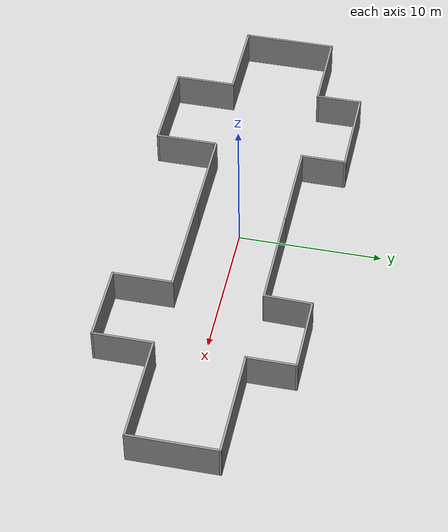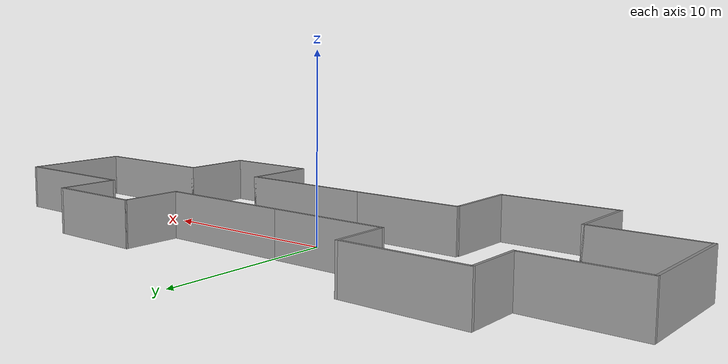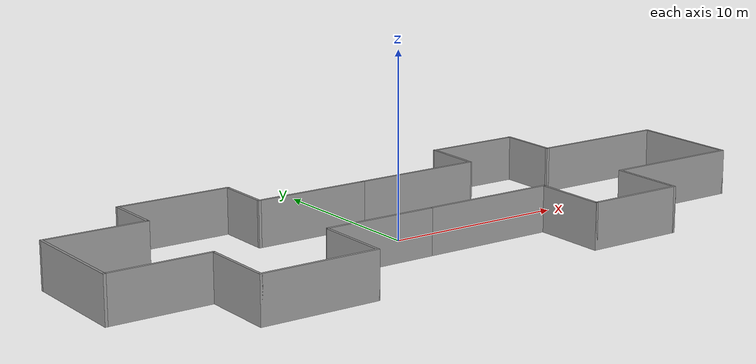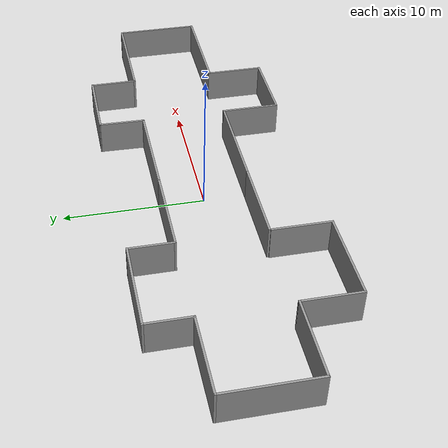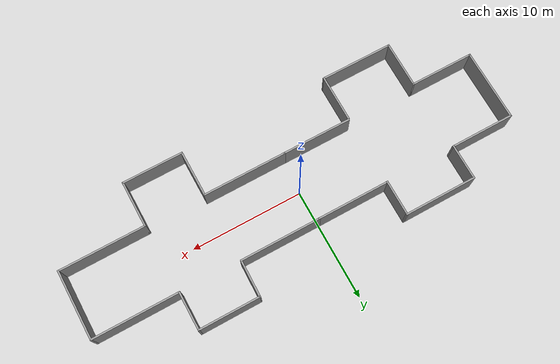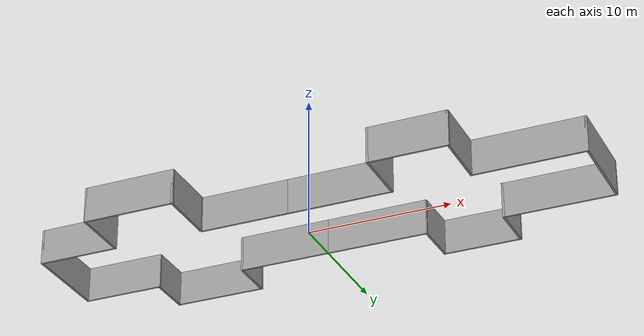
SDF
<?xml version='1.0'?>
<sdf version='1.7'>
  <model name='corredores.world'>
    <pose>0.888521 -0.410206 0 0 -0 0</pose>
    <link name='Wall_39'>
      <collision name='Wall_39_Collision'>
        <geometry>
          <box>
            <size>7.25 0.15 2.5</size>
          </box>
        </geometry>
        <pose>0 0 1.25 0 -0 0</pose>
      </collision>
      <visual name='Wall_39_Visual'>
        <pose>0 0 1.25 0 -0 0</pose>
        <geometry>
          <box>
            <size>7.25 0.15 2.5</size>
          </box>
        </geometry>
        <material>
          <script>
            <uri>file://media/materials/scripts/gazebo.material</uri>
            <name>Gazebo/Grey</name>
          </script>
          <ambient>1 1 1 1</ambient>
        </material>
        <meta>
          <layer>0</layer>
        </meta>
      </visual>
      <pose>2.64177 3.60415 0 0 -0 0</pose>
    </link>
    <link name='Wall_41'>
      <collision name='Wall_41_Collision'>
        <geometry>
          <box>
            <size>7.5 0.15 2.5</size>
          </box>
        </geometry>
        <pose>0 0 1.25 0 -0 0</pose>
      </collision>
      <visual name='Wall_41_Visual'>
        <pose>0 0 1.25 0 -0 0</pose>
        <geometry>
          <box>
            <size>7.5 0.15 2.5</size>
          </box>
        </geometry>
        <material>
          <script>
            <uri>file://media/materials/scripts/gazebo.material</uri>
            <name>Gazebo/Grey</name>
          </script>
          <ambient>1 1 1 1</ambient>
        </material>
        <meta>
          <layer>0</layer>
        </meta>
      </visual>
      <pose>2.58323 -2.60567 0 0 -0 0</pose>
    </link>
    <link name='Wall_43'>
      <collision name='Wall_43_Collision'>
        <geometry>
          <box>
            <size>4.25 0.15 2.5</size>
          </box>
        </geometry>
        <pose>0 0 1.25 0 -0 0</pose>
      </collision>
      <visual name='Wall_43_Visual'>
        <pose>0 0 1.25 0 -0 0</pose>
        <geometry>
          <box>
            <size>4.25 0.15 2.5</size>
          </box>
        </geometry>
        <material>
          <script>
            <uri>file://media/materials/scripts/gazebo.material</uri>
            <name>Gazebo/Grey</name>
          </script>
          <ambient>1 1 1 1</ambient>
        </material>
        <meta>
          <layer>0</layer>
        </meta>
      </visual>
      <pose>6.25823 -4.65567 0 0 -0 -1.5708</pose>
    </link>
    <link name='Wall_44'>
      <collision name='Wall_44_Collision'>
        <geometry>
          <box>
            <size>5.5 0.15 2.5</size>
          </box>
        </geometry>
        <pose>0 0 1.25 0 -0 0</pose>
      </collision>
      <visual name='Wall_44_Visual'>
        <pose>0 0 1.25 0 -0 0</pose>
        <geometry>
          <box>
            <size>5.5 0.15 2.5</size>
          </box>
        </geometry>
        <material>
          <script>
            <uri>file://media/materials/scripts/gazebo.material</uri>
            <name>Gazebo/Grey</name>
          </script>
          <ambient>1 1 1 1</ambient>
        </material>
        <meta>
          <layer>0</layer>
        </meta>
      </visual>
      <pose>8.93323 -6.70567 0 0 -0 0</pose>
    </link>
    <link name='Wall_45'>
      <collision name='Wall_45_Collision'>
        <geometry>
          <box>
            <size>4.25 0.15 2.5</size>
          </box>
        </geometry>
        <pose>0 0 1.25 0 -0 0</pose>
      </collision>
      <visual name='Wall_45_Visual'>
        <pose>0 0 1.25 0 -0 0</pose>
        <geometry>
          <box>
            <size>4.25 0.15 2.5</size>
          </box>
        </geometry>
        <material>
          <script>
            <uri>file://media/materials/scripts/gazebo.material</uri>
            <name>Gazebo/Grey</name>
          </script>
          <ambient>1 1 1 1</ambient>
        </material>
        <meta>
          <layer>0</layer>
        </meta>
      </visual>
      <pose>11.6082 -4.65567 0 0 -0 1.5708</pose>
    </link>
    <link name='Wall_46'>
      <collision name='Wall_46_Collision'>
        <geometry>
          <box>
            <size>7.75 0.15 2.5</size>
          </box>
        </geometry>
        <pose>0 0 1.25 0 -0 0</pose>
      </collision>
      <visual name='Wall_46_Visual'>
        <pose>0 0 1.25 0 -0 0</pose>
        <geometry>
          <box>
            <size>7.75 0.15 2.5</size>
          </box>
        </geometry>
        <material>
          <script>
            <uri>file://media/materials/scripts/gazebo.material</uri>
            <name>Gazebo/Grey</name>
          </script>
          <ambient>1 1 1 1</ambient>
        </material>
        <meta>
          <layer>0</layer>
        </meta>
      </visual>
      <pose>15.4082 -2.60567 0 0 -0 0</pose>
    </link>
    <link name='Wall_47'>
      <collision name='Wall_47_Collision'>
        <geometry>
          <box>
            <size>6.25 0.15 2.5</size>
          </box>
        </geometry>
        <pose>0 0 1.25 0 -0 0</pose>
      </collision>
      <visual name='Wall_47_Visual'>
        <pose>0 0 1.25 0 -0 0</pose>
        <geometry>
          <box>
            <size>6.25 0.15 2.5</size>
          </box>
        </geometry>
        <material>
          <script>
            <uri>file://media/materials/scripts/gazebo.material</uri>
            <name>Gazebo/Grey</name>
          </script>
          <ambient>1 1 1 1</ambient>
        </material>
        <meta>
          <layer>0</layer>
        </meta>
      </visual>
      <pose>19.2082 0.444331 0 0 -0 1.5708</pose>
    </link>
    <link name='Wall_49'>
      <collision name='Wall_49_Collision'>
        <geometry>
          <box>
            <size>7.75 0.15 2.5</size>
          </box>
        </geometry>
        <pose>0 0 1.25 0 -0 0</pose>
      </collision>
      <visual name='Wall_49_Visual'>
        <pose>0 0 1.25 0 -0 0</pose>
        <geometry>
          <box>
            <size>7.75 0.15 2.5</size>
          </box>
        </geometry>
        <material>
          <script>
            <uri>file://media/materials/scripts/gazebo.material</uri>
            <name>Gazebo/Grey</name>
          </script>
          <ambient>1 1 1 1</ambient>
        </material>
        <meta>
          <layer>0</layer>
        </meta>
      </visual>
      <pose>15.4082 3.49433 0 0 -0 3.14159</pose>
    </link>
    <link name='Wall_50'>
      <collision name='Wall_50_Collision'>
        <geometry>
          <box>
            <size>3.5 0.15 2.5</size>
          </box>
        </geometry>
        <pose>0 0 1.25 0 -0 0</pose>
      </collision>
      <visual name='Wall_50_Visual'>
        <pose>0 0 1.25 0 -0 0</pose>
        <geometry>
          <box>
            <size>3.5 0.15 2.5</size>
          </box>
        </geometry>
        <material>
          <script>
            <uri>file://media/materials/scripts/gazebo.material</uri>
            <name>Gazebo/Grey</name>
          </script>
          <ambient>1 1 1 1</ambient>
        </material>
        <meta>
          <layer>0</layer>
        </meta>
      </visual>
      <pose>11.6082 5.16933 0 0 -0 1.5708</pose>
    </link>
    <link name='Wall_51'>
      <collision name='Wall_51_Collision'>
        <geometry>
          <box>
            <size>5.5 0.15 2.5</size>
          </box>
        </geometry>
        <pose>0 0 1.25 0 -0 0</pose>
      </collision>
      <visual name='Wall_51_Visual'>
        <pose>0 0 1.25 0 -0 0</pose>
        <geometry>
          <box>
            <size>5.5 0.15 2.5</size>
          </box>
        </geometry>
        <material>
          <script>
            <uri>file://media/materials/scripts/gazebo.material</uri>
            <name>Gazebo/Grey</name>
          </script>
          <ambient>1 1 1 1</ambient>
        </material>
        <meta>
          <layer>0</layer>
        </meta>
      </visual>
      <pose>8.93323 6.84433 0 0 -0 3.14159</pose>
    </link>
    <link name='Wall_52'>
      <collision name='Wall_52_Collision'>
        <geometry>
          <box>
            <size>3.39086 0.15 2.5</size>
          </box>
        </geometry>
        <pose>0 0 1.25 0 -0 0</pose>
      </collision>
      <visual name='Wall_52_Visual'>
        <pose>0 0 1.25 0 -0 0</pose>
        <geometry>
          <box>
            <size>3.39086 0.15 2.5</size>
          </box>
        </geometry>
        <material>
          <script>
            <uri>file://media/materials/scripts/gazebo.material</uri>
            <name>Gazebo/Grey</name>
          </script>
          <ambient>1 1 1 1</ambient>
        </material>
        <meta>
          <layer>0</layer>
        </meta>
      </visual>
      <pose>6.225 5.22424 0 0 -0 -1.5913</pose>
    </link>
    <link name='Wall_54'>
      <collision name='Wall_54_Collision'>
        <geometry>
          <box>
            <size>6.5 0.15 2.5</size>
          </box>
        </geometry>
        <pose>0 0 1.25 0 -0 0</pose>
      </collision>
      <visual name='Wall_54_Visual'>
        <pose>0 0 1.25 0 -0 0</pose>
        <geometry>
          <box>
            <size>6.5 0.15 2.5</size>
          </box>
        </geometry>
        <material>
          <script>
            <uri>file://media/materials/scripts/gazebo.material</uri>
            <name>Gazebo/Grey</name>
          </script>
          <ambient>1 1 1 1</ambient>
        </material>
        <meta>
          <layer>0</layer>
        </meta>
      </visual>
      <pose>-4.08323 3.60415 0 0 -0 3.14159</pose>
    </link>
    <link name='Wall_55'>
      <collision name='Wall_55_Collision'>
        <geometry>
          <box>
            <size>3.25 0.15 2.5</size>
          </box>
        </geometry>
        <pose>0 0 1.25 0 -0 0</pose>
      </collision>
      <visual name='Wall_55_Visual'>
        <pose>0 0 1.25 0 -0 0</pose>
        <geometry>
          <box>
            <size>3.25 0.15 2.5</size>
          </box>
        </geometry>
        <material>
          <script>
            <uri>file://media/materials/scripts/gazebo.material</uri>
            <name>Gazebo/Grey</name>
          </script>
          <ambient>1 1 1 1</ambient>
        </material>
        <meta>
          <layer>0</layer>
        </meta>
      </visual>
      <pose>-7.25823 5.15415 0 0 -0 1.5708</pose>
    </link>
    <link name='Wall_56'>
      <collision name='Wall_56_Collision'>
        <geometry>
          <box>
            <size>6.5 0.15 2.5</size>
          </box>
        </geometry>
        <pose>0 0 1.25 0 -0 0</pose>
      </collision>
      <visual name='Wall_56_Visual'>
        <pose>0 0 1.25 0 -0 0</pose>
        <geometry>
          <box>
            <size>6.5 0.15 2.5</size>
          </box>
        </geometry>
        <material>
          <script>
            <uri>file://media/materials/scripts/gazebo.material</uri>
            <name>Gazebo/Grey</name>
          </script>
          <ambient>1 1 1 1</ambient>
        </material>
        <meta>
          <layer>0</layer>
        </meta>
      </visual>
      <pose>-10.4332 6.70415 0 0 -0 3.14159</pose>
    </link>
    <link name='Wall_57'>
      <collision name='Wall_57_Collision'>
        <geometry>
          <box>
            <size>3.25 0.15 2.5</size>
          </box>
        </geometry>
        <pose>0 0 1.25 0 -0 0</pose>
      </collision>
      <visual name='Wall_57_Visual'>
        <pose>0 0 1.25 0 -0 0</pose>
        <geometry>
          <box>
            <size>3.25 0.15 2.5</size>
          </box>
        </geometry>
        <material>
          <script>
            <uri>file://media/materials/scripts/gazebo.material</uri>
            <name>Gazebo/Grey</name>
          </script>
          <ambient>1 1 1 1</ambient>
        </material>
        <meta>
          <layer>0</layer>
        </meta>
      </visual>
      <pose>-13.6082 5.15415 0 0 -0 -1.5708</pose>
    </link>
    <link name='Wall_58'>
      <collision name='Wall_58_Collision'>
        <geometry>
          <box>
            <size>5.75 0.15 2.5</size>
          </box>
        </geometry>
        <pose>0 0 1.25 0 -0 0</pose>
      </collision>
      <visual name='Wall_58_Visual'>
        <pose>0 0 1.25 0 -0 0</pose>
        <geometry>
          <box>
            <size>5.75 0.15 2.5</size>
          </box>
        </geometry>
        <material>
          <script>
            <uri>file://media/materials/scripts/gazebo.material</uri>
            <name>Gazebo/Grey</name>
          </script>
          <ambient>1 1 1 1</ambient>
        </material>
        <meta>
          <layer>0</layer>
        </meta>
      </visual>
      <pose>-16.4082 3.60415 0 0 -0 3.14159</pose>
    </link>
    <link name='Wall_59'>
      <collision name='Wall_59_Collision'>
        <geometry>
          <box>
            <size>6.5 0.15 2.5</size>
          </box>
        </geometry>
        <pose>0 0 1.25 0 -0 0</pose>
      </collision>
      <visual name='Wall_59_Visual'>
        <pose>0 0 1.25 0 -0 0</pose>
        <geometry>
          <box>
            <size>6.5 0.15 2.5</size>
          </box>
        </geometry>
        <material>
          <script>
            <uri>file://media/materials/scripts/gazebo.material</uri>
            <name>Gazebo/Grey</name>
          </script>
          <ambient>1 1 1 1</ambient>
        </material>
        <meta>
          <layer>0</layer>
        </meta>
      </visual>
      <pose>-19.2082 0.429147 0 0 -0 -1.5708</pose>
    </link>
    <link name='Wall_60'>
      <collision name='Wall_60_Collision'>
        <geometry>
          <box>
            <size>5.75 0.15 2.5</size>
          </box>
        </geometry>
        <pose>0 0 1.25 0 -0 0</pose>
      </collision>
      <visual name='Wall_60_Visual'>
        <pose>0 0 1.25 0 -0 0</pose>
        <geometry>
          <box>
            <size>5.75 0.15 2.5</size>
          </box>
        </geometry>
        <material>
          <script>
            <uri>file://media/materials/scripts/gazebo.material</uri>
            <name>Gazebo/Grey</name>
          </script>
          <ambient>1 1 1 1</ambient>
        </material>
        <meta>
          <layer>0</layer>
        </meta>
      </visual>
      <pose>-16.4082 -2.74585 0 0 -0 0</pose>
    </link>
    <link name='Wall_61'>
      <collision name='Wall_61_Collision'>
        <geometry>
          <box>
            <size>4.25 0.15 2.5</size>
          </box>
        </geometry>
        <pose>0 0 1.25 0 -0 0</pose>
      </collision>
      <visual name='Wall_61_Visual'>
        <pose>0 0 1.25 0 -0 0</pose>
        <geometry>
          <box>
            <size>4.25 0.15 2.5</size>
          </box>
        </geometry>
        <material>
          <script>
            <uri>file://media/materials/scripts/gazebo.material</uri>
            <name>Gazebo/Grey</name>
          </script>
          <ambient>1 1 1 1</ambient>
        </material>
        <meta>
          <layer>0</layer>
        </meta>
      </visual>
      <pose>-13.6082 -4.79585 0 0 -0 -1.5708</pose>
    </link>
    <link name='Wall_62'>
      <collision name='Wall_62_Collision'>
        <geometry>
          <box>
            <size>6.5 0.15 2.5</size>
          </box>
        </geometry>
        <pose>0 0 1.25 0 -0 0</pose>
      </collision>
      <visual name='Wall_62_Visual'>
        <pose>0 0 1.25 0 -0 0</pose>
        <geometry>
          <box>
            <size>6.5 0.15 2.5</size>
          </box>
        </geometry>
        <material>
          <script>
            <uri>file://media/materials/scripts/gazebo.material</uri>
            <name>Gazebo/Grey</name>
          </script>
          <ambient>1 1 1 1</ambient>
        </material>
        <meta>
          <layer>0</layer>
        </meta>
      </visual>
      <pose>-10.4332 -6.84585 0 0 -0 0</pose>
    </link>
    <link name='Wall_63'>
      <collision name='Wall_63_Collision'>
        <geometry>
          <box>
            <size>4.25 0.15 2.5</size>
          </box>
        </geometry>
        <pose>0 0 1.25 0 -0 0</pose>
      </collision>
      <visual name='Wall_63_Visual'>
        <pose>0 0 1.25 0 -0 0</pose>
        <geometry>
          <box>
            <size>4.25 0.15 2.5</size>
          </box>
        </geometry>
        <material>
          <script>
            <uri>file://media/materials/scripts/gazebo.material</uri>
            <name>Gazebo/Grey</name>
          </script>
          <ambient>1 1 1 1</ambient>
        </material>
        <meta>
          <layer>0</layer>
        </meta>
      </visual>
      <pose>-7.25823 -4.79585 0 0 -0 1.5708</pose>
    </link>
    <link name='Wall_65'>
      <collision name='Wall_65_Collision'>
        <geometry>
          <box>
            <size>0.15 0.15 2.5</size>
          </box>
        </geometry>
        <pose>0 0 1.25 0 -0 0</pose>
      </collision>
      <visual name='Wall_65_Visual'>
        <pose>0 0 1.25 0 -0 0</pose>
        <geometry>
          <box>
            <size>0.15 0.15 2.5</size>
          </box>
        </geometry>
        <material>
          <script>
            <uri>file://media/materials/scripts/gazebo.material</uri>
            <name>Gazebo/Grey</name>
          </script>
          <ambient>1 1 1 1</ambient>
        </material>
        <meta>
          <layer>0</layer>
        </meta>
      </visual>
      <pose>-7.25823 -2.74585 0 0 -0 0</pose>
    </link>
    <link name='Wall_66'>
      <collision name='Wall_66_Collision'>
        <geometry>
          <box>
            <size>0.15 0.15 2.5</size>
          </box>
        </geometry>
        <pose>0 0 1.25 0 -0 0</pose>
      </collision>
      <visual name='Wall_66_Visual'>
        <pose>0 0 1.25 0 -0 0</pose>
        <geometry>
          <box>
            <size>0.15 0.15 2.5</size>
          </box>
        </geometry>
        <material>
          <script>
            <uri>file://media/materials/scripts/gazebo.material</uri>
            <name>Gazebo/Grey</name>
          </script>
          <ambient>1 1 1 1</ambient>
        </material>
        <meta>
          <layer>0</layer>
        </meta>
      </visual>
      <pose>-7.25823 -2.74585 0 0 -0 0</pose>
    </link>
    <link name='Wall_67'>
      <collision name='Wall_67_Collision'>
        <geometry>
          <box>
            <size>0.15 0.15 2.5</size>
          </box>
        </geometry>
        <pose>0 0 1.25 0 -0 0</pose>
      </collision>
      <visual name='Wall_67_Visual'>
        <pose>0 0 1.25 0 -0 0</pose>
        <geometry>
          <box>
            <size>0.15 0.15 2.5</size>
          </box>
        </geometry>
        <material>
          <script>
            <uri>file://media/materials/scripts/gazebo.material</uri>
            <name>Gazebo/Grey</name>
          </script>
          <ambient>1 1 1 1</ambient>
        </material>
        <meta>
          <layer>0</layer>
        </meta>
      </visual>
      <pose>-7.25823 -2.74585 0 0 -0 0</pose>
    </link>
    <link name='Wall_70'>
      <collision name='Wall_70_Collision'>
        <geometry>
          <box>
            <size>6.25 0.15 2.5</size>
          </box>
        </geometry>
        <pose>0 0 1.25 0 -0 0</pose>
      </collision>
      <visual name='Wall_70_Visual'>
        <pose>0 0 1.25 0 -0 0</pose>
        <geometry>
          <box>
            <size>6.25 0.15 2.5</size>
          </box>
        </geometry>
        <material>
          <script>
            <uri>file://media/materials/scripts/gazebo.material</uri>
            <name>Gazebo/Grey</name>
          </script>
          <ambient>1 1 1 1</ambient>
        </material>
        <meta>
          <layer>0</layer>
        </meta>
      </visual>
      <pose>-4.14177 -2.60567 0 0 -0 3.14159</pose>
    </link>
    <static>1</static>
  </model>
</sdf>
